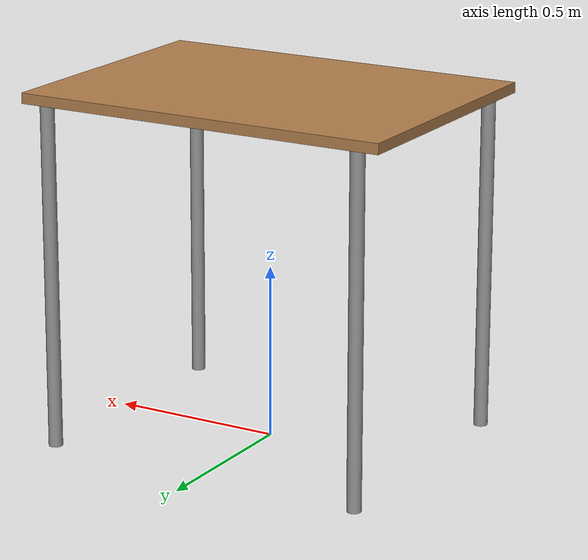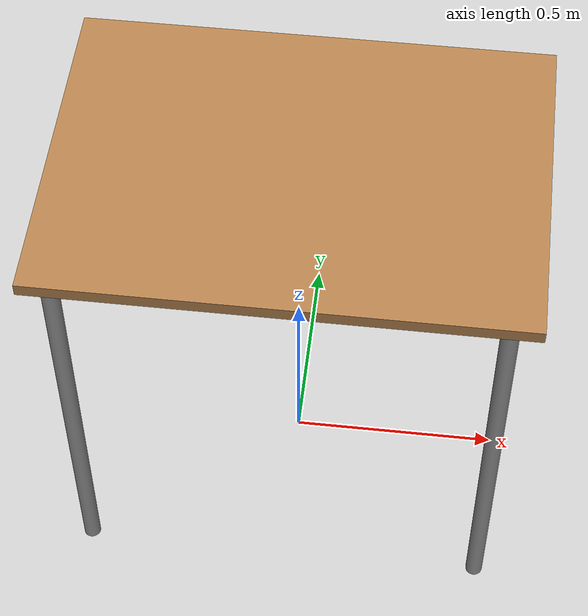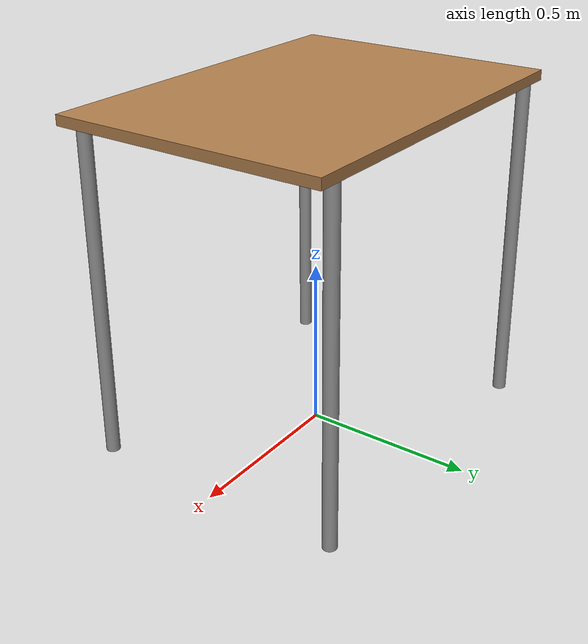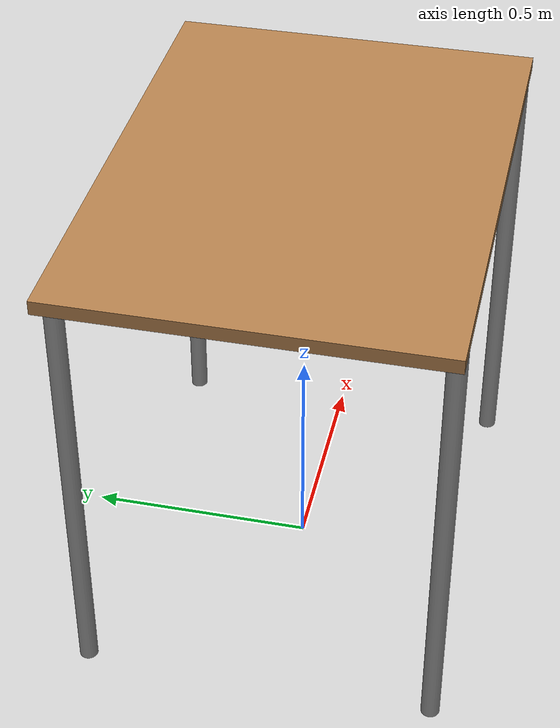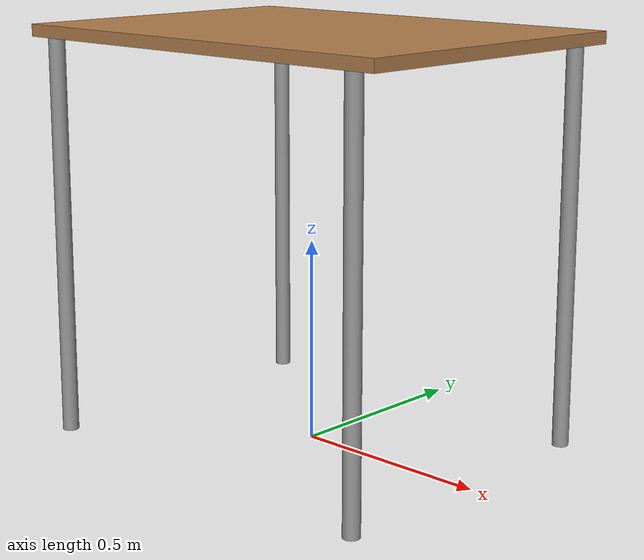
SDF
<sdf version="1.5">
  <model name="Table">
    <static>true</static>

    <link name="link">

      <!-- Tabletop -->
      <collision name="surface">
        <pose>0 0 1.0 0 0 0</pose>
        <geometry>
          <box>
            <size>1.1 0.8 0.03</size>
          </box>
        </geometry>
        <surface>
          <friction>
            <ode>
              <mu>0.6</mu>
              <mu2>0.6</mu2>
            </ode>
          </friction>
        </surface>
      </collision>

      <visual name="visual1">
        <pose>0 0 1.0 0 0 0</pose>
        <geometry>
          <box>
            <size>1.1 0.8 0.03</size>
          </box>
        </geometry>
        <material>
          <diffuse>1.0 1.0 1.0</diffuse>
          <script>
            <uri>file://media/materials/scripts/gazebo.material</uri>
            <name>Gazebo/Wood</name>
          </script>
          <pbr>
            <metal>
              <albedo_map>https://fuel.gazebosim.org/1.0/openrobotics/models/table/4/files/Table_Diffuse.jpg</albedo_map>
            </metal>
          </pbr>
        </material>
      </visual>

      <!-- Front Left Leg -->
      <collision name="front_left_leg">
        <pose>0.48 0.38 0.5 0 0 0</pose>
        <geometry>
          <cylinder>
            <radius>0.02</radius>
            <length>1.0</length>
          </cylinder>
        </geometry>
      </collision>

      <visual name="front_left_leg">
        <pose>0.48 0.38 0.5 0 0 0</pose>
        <geometry>
          <cylinder>
            <radius>0.02</radius>
            <length>1.0</length>
          </cylinder>
        </geometry>
        <material>
          <diffuse>0.5 0.5 0.5</diffuse>
          <script>
            <uri>file://media/materials/scripts/gazebo.material</uri>
            <name>Gazebo/Grey</name>
          </script>
        </material>
      </visual>

      <!-- Front Right Leg -->
      <collision name="front_right_leg">
        <pose>0.48 -0.38 0.5 0 0 0</pose>
        <geometry>
          <cylinder>
            <radius>0.02</radius>
            <length>1.0</length>
          </cylinder>
        </geometry>
      </collision>

      <visual name="front_right_leg">
        <pose>0.48 -0.38 0.5 0 0 0</pose>
        <geometry>
          <cylinder>
            <radius>0.02</radius>
            <length>1.0</length>
          </cylinder>
        </geometry>
        <material>
          <diffuse>0.5 0.5 0.5</diffuse>
          <script>
            <uri>file://media/materials/scripts/gazebo.material</uri>
            <name>Gazebo/Grey</name>
          </script>
        </material>
      </visual>

      <!-- Back Right Leg -->
      <collision name="back_right_leg">
        <pose>-0.48 -0.38 0.5 0 0 0</pose>
        <geometry>
          <cylinder>
            <radius>0.02</radius>
            <length>1.0</length>
          </cylinder>
        </geometry>
      </collision>

      <visual name="back_right_leg">
        <pose>-0.48 -0.38 0.5 0 0 0</pose>
        <geometry>
          <cylinder>
            <radius>0.02</radius>
            <length>1.0</length>
          </cylinder>
        </geometry>
        <material>
          <diffuse>0.5 0.5 0.5</diffuse>
          <script>
            <uri>file://media/materials/scripts/gazebo.material</uri>
            <name>Gazebo/Grey</name>
          </script>
        </material>
      </visual>

      <!-- Back Left Leg -->
      <collision name="back_left_leg">
        <pose>-0.48 0.38 0.5 0 0 0</pose>
        <geometry>
          <cylinder>
            <radius>0.02</radius>
            <length>1.0</length>
          </cylinder>
        </geometry>
      </collision>

      <visual name="back_left_leg">
        <pose>-0.48 0.38 0.5 0 0 0</pose>
        <geometry>
          <cylinder>
            <radius>0.02</radius>
            <length>1.0</length>
          </cylinder>
        </geometry>
        <material>
          <diffuse>0.5 0.5 0.5</diffuse>
          <script>
            <uri>file://media/materials/scripts/gazebo.material</uri>
            <name>Gazebo/Grey</name>
          </script>
        </material>
      </visual>

    </link>
  </model>
</sdf>
